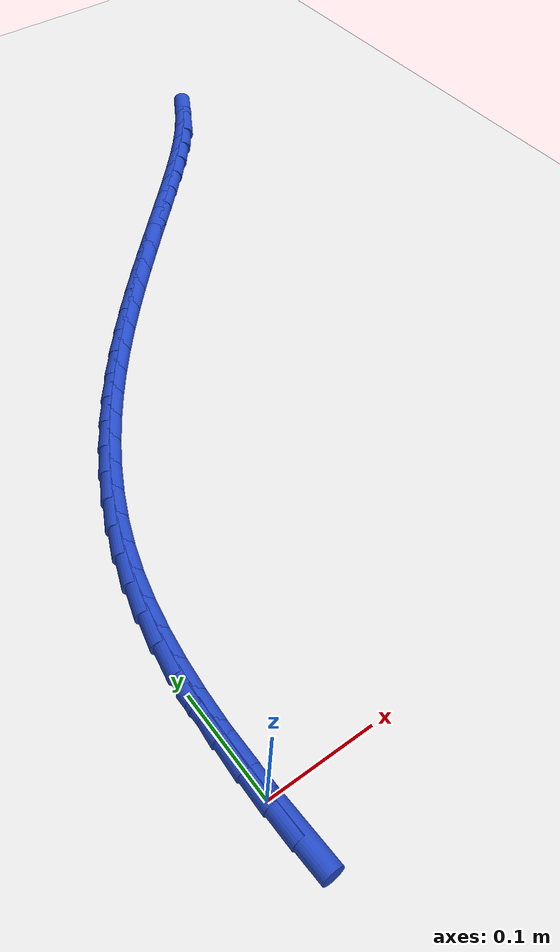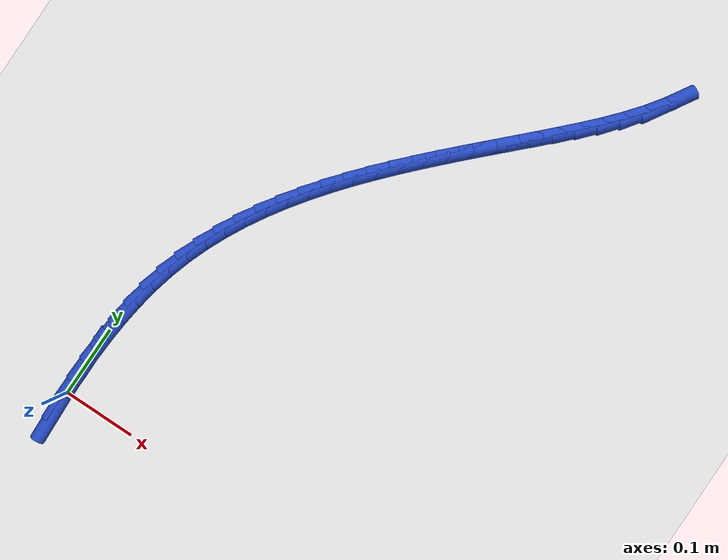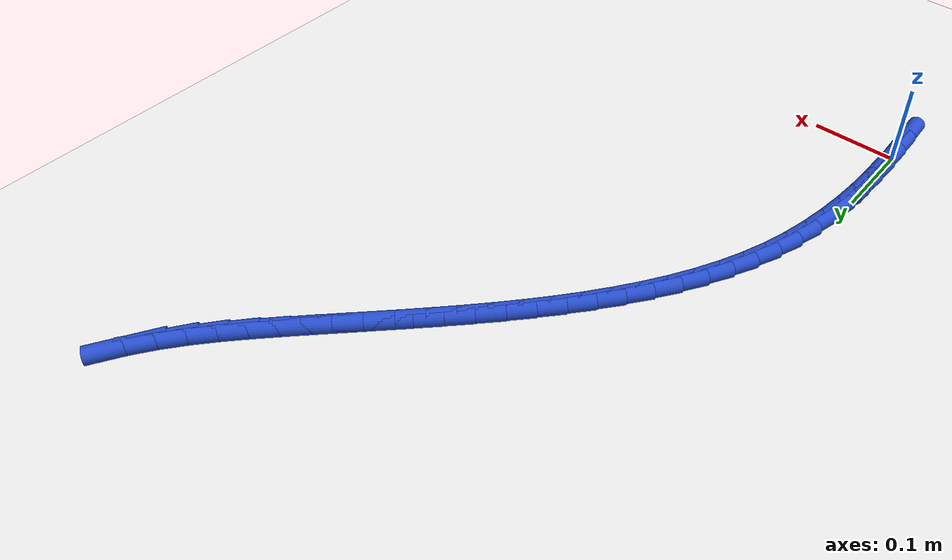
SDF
<sdf version="1.6">
 <world name="default">
  <model name="ground_plane">
   <static>1</static>
   <link name="link">
    <collision name="collision">
     <geometry><plane><normal>0 0 1</normal><size>100 100</size></plane></geometry>
     <surface><friction><ode><mu>100</mu><mu2>50</mu2></ode></friction></surface>
    </collision>
    <visual name="visual">
     <cast_shadows>0</cast_shadows>
     <geometry><plane><normal>0 0 1</normal><size>100 100</size></plane></geometry>
     <material>
      <script><uri>file://media/materials/scripts/gazebo.material</uri><name>Gazebo/WhiteGlow</name></script>
     </material>
    </visual>
   </link>
  </model>
  <model name="line">
   <link name="link_0">
    <pose>4.336808689942018e-19 -4.85722573273506e-17 0.01 0 1.57 -1.557330671674084</pose>
    <collision name="collision">
     <geometry><cylinder><radius>0.01</radius><length>0.08</length></cylinder></geometry>
    </collision>
    <visual name="visual">
     <material>
      <script><name>Gazebo/Blue</name><uri>file://media/materials/scripts/gazebo.material</uri></script>
     </material>
     <geometry><cylinder><radius>0.01</radius><length>0.08</length></cylinder></geometry>
    </visual>
   </link>
   <link name="link_1">
    <pose>-0.00040750909841996545 0.030261020655215857 0.01 0 1.57 1.5542438206750813</pose>
    <collision name="collision">
     <geometry><cylinder><radius>0.01</radius><length>0.08</length></cylinder></geometry>
    </collision>
    <visual name="visual">
     <material>
      <script><name>Gazebo/Blue</name><uri>file://media/materials/scripts/gazebo.material</uri></script>
     </material>
     <geometry><cylinder><radius>0.01</radius><length>0.08</length></cylinder></geometry>
    </visual>
   </link>
   <link name="link_2">
    <pose>9.522308559340646e-05 0.06063021464714905 0.01 0 1.57 1.5196190682958277</pose>
    <collision name="collision">
     <geometry><cylinder><radius>0.01</radius><length>0.08</length></cylinder></geometry>
    </collision>
    <visual name="visual">
     <material>
      <script><name>Gazebo/Blue</name><uri>file://media/materials/scripts/gazebo.material</uri></script>
     </material>
     <geometry><cylinder><radius>0.01</radius><length>0.08</length></cylinder></geometry>
    </visual>
   </link>
   <link name="link_3">
    <pose>0.0016496046698707635 0.09097619955869332 0.01 0 1.57 1.480045543788622</pose>
    <collision name="collision">
     <geometry><cylinder><radius>0.01</radius><length>0.08</length></cylinder></geometry>
    </collision>
    <visual name="visual">
     <material>
      <script><name>Gazebo/Blue</name><uri>file://media/materials/scripts/gazebo.material</uri></script>
     </material>
     <geometry><cylinder><radius>0.01</radius><length>0.08</length></cylinder></geometry>
    </visual>
   </link>
   <link name="link_4">
    <pose>0.004397043772242746 0.12116759297274225 0.01 0 1.57 1.43514081480295</pose>
    <collision name="collision">
     <geometry><cylinder><radius>0.01</radius><length>0.08</length></cylinder></geometry>
    </collision>
    <visual name="visual">
     <material>
      <script><name>Gazebo/Blue</name><uri>file://media/materials/scripts/gazebo.material</uri></script>
     </material>
     <geometry><cylinder><radius>0.01</radius><length>0.08</length></cylinder></geometry>
    </visual>
   </link>
   <link name="link_5">
    <pose>0.008478948510540006 0.15107301247218968 0.01 0 1.57 1.384506139608768</pose>
    <collision name="collision">
     <geometry><cylinder><radius>0.01</radius><length>0.08</length></cylinder></geometry>
    </collision>
    <visual name="visual">
     <material>
      <script><name>Gazebo/Blue</name><uri>file://media/materials/scripts/gazebo.material</uri></script>
     </material>
     <geometry><cylinder><radius>0.01</radius><length>0.08</length></cylinder></geometry>
    </visual>
   </link>
   <link name="link_6">
    <pose>0.014036727002593188 0.18056107563992924 0.01 0 1.57 1.3277624946852375</pose>
    <collision name="collision">
     <geometry><cylinder><radius>0.01</radius><length>0.08</length></cylinder></geometry>
    </collision>
    <visual name="visual">
     <material>
      <script><name>Gazebo/Blue</name><uri>file://media/materials/scripts/gazebo.material</uri></script>
     </material>
     <geometry><cylinder><radius>0.01</radius><length>0.08</length></cylinder></geometry>
    </visual>
   </link>
   <link name="link_7">
    <pose>0.02121178736623293 0.20950040005885456 0.01 0 1.57 1.264878874996774</pose>
    <collision name="collision">
     <geometry><cylinder><radius>0.01</radius><length>0.08</length></cylinder></geometry>
    </collision>
    <visual name="visual">
     <material>
      <script><name>Gazebo/Blue</name><uri>file://media/materials/scripts/gazebo.material</uri></script>
     </material>
     <geometry><cylinder><radius>0.01</radius><length>0.08</length></cylinder></geometry>
    </visual>
   </link>
   <link name="link_8">
    <pose>0.030138379030528524 0.2377641429210412 0.01 0 1.57 1.2010551654600476</pose>
    <collision name="collision">
     <geometry><cylinder><radius>0.01</radius><length>0.08</length></cylinder></geometry>
    </collision>
    <visual name="visual">
     <material>
      <script><name>Gazebo/Blue</name><uri>file://media/materials/scripts/gazebo.material</uri></script>
     </material>
     <geometry><cylinder><radius>0.01</radius><length>0.08</length></cylinder></geometry>
    </visual>
   </link>
   <link name="link_9">
    <pose>0.04081483946518975 0.26531164859601863 0.01 0 1.57 1.1413833719987403</pose>
    <collision name="collision">
     <geometry><cylinder><radius>0.01</radius><length>0.08</length></cylinder></geometry>
    </collision>
    <visual name="visual">
     <material>
      <script><name>Gazebo/Blue</name><uri>file://media/materials/scripts/gazebo.material</uri></script>
     </material>
     <geometry><cylinder><radius>0.01</radius><length>0.08</length></cylinder></geometry>
    </visual>
   </link>
   <link name="link_10">
    <pose>0.05311786862572651 0.29217939663752573 0.01 0 1.57 1.0863715544711166</pose>
    <collision name="collision">
     <geometry><cylinder><radius>0.01</radius><length>0.08</length></cylinder></geometry>
    </collision>
    <visual name="visual">
     <material>
      <script><name>Gazebo/Blue</name><uri>file://media/materials/scripts/gazebo.material</uri></script>
     </material>
     <geometry><cylinder><radius>0.01</radius><length>0.08</length></cylinder></geometry>
    </visual>
   </link>
   <link name="link_11">
    <pose>0.06691987369153346 0.31840658881932216 0.01 0 1.57 1.0361963824167704</pose>
    <collision name="collision">
     <geometry><cylinder><radius>0.01</radius><length>0.08</length></cylinder></geometry>
    </collision>
    <visual name="visual">
     <material>
      <script><name>Gazebo/Blue</name><uri>file://media/materials/scripts/gazebo.material</uri></script>
     </material>
     <geometry><cylinder><radius>0.01</radius><length>0.08</length></cylinder></geometry>
    </visual>
   </link>
   <link name="link_12">
    <pose>0.08209326184200522 0.34403242691516717 0.01 0 1.57 0.9909012333198532</pose>
    <collision name="collision">
     <geometry><cylinder><radius>0.01</radius><length>0.08</length></cylinder></geometry>
    </collision>
    <visual name="visual">
     <material>
      <script><name>Gazebo/Blue</name><uri>file://media/materials/scripts/gazebo.material</uri></script>
     </material>
     <geometry><cylinder><radius>0.01</radius><length>0.08</length></cylinder></geometry>
    </visual>
   </link>
   <link name="link_13">
    <pose>0.09851044025653646 0.3690961126988206 0.01 0 1.57 0.9504313867910731</pose>
    <collision name="collision">
     <geometry><cylinder><radius>0.01</radius><length>0.08</length></cylinder></geometry>
    </collision>
    <visual name="visual">
     <material>
      <script><name>Gazebo/Blue</name><uri>file://media/materials/scripts/gazebo.material</uri></script>
     </material>
     <geometry><cylinder><radius>0.01</radius><length>0.08</length></cylinder></geometry>
    </visual>
   </link>
   <link name="link_14">
    <pose>0.11604381611452176 0.39363684794404147 0.01 0 1.57 0.9146671694281283</pose>
    <collision name="collision">
     <geometry><cylinder><radius>0.01</radius><length>0.08</length></cylinder></geometry>
    </collision>
    <visual name="visual">
     <material>
      <script><name>Gazebo/Blue</name><uri>file://media/materials/scripts/gazebo.material</uri></script>
     </material>
     <geometry><cylinder><radius>0.01</radius><length>0.08</length></cylinder></geometry>
    </visual>
   </link>
   <link name="link_15">
    <pose>0.13456579659535586 0.41769383442458974 0.01 0 1.57 0.8834523863434248</pose>
    <collision name="collision">
     <geometry><cylinder><radius>0.01</radius><length>0.08</length></cylinder></geometry>
    </collision>
    <visual name="visual">
     <material>
      <script><name>Gazebo/Blue</name><uri>file://media/materials/scripts/gazebo.material</uri></script>
     </material>
     <geometry><cylinder><radius>0.01</radius><length>0.08</length></cylinder></geometry>
    </visual>
   </link>
   <link name="link_16">
    <pose>0.1539487888784334 0.44130627391422467 0.01 0 1.57 0.856617141175213</pose>
    <collision name="collision">
     <geometry><cylinder><radius>0.01</radius><length>0.08</length></cylinder></geometry>
    </collision>
    <visual name="visual">
     <material>
      <script><name>Gazebo/Blue</name><uri>file://media/materials/scripts/gazebo.material</uri></script>
     </material>
     <geometry><cylinder><radius>0.01</radius><length>0.08</length></cylinder></geometry>
    </visual>
   </link>
   <link name="link_17">
    <pose>0.17406520014314905 0.4645133681867059 0.01 0 1.57 0.8339952775698508</pose>
    <collision name="collision">
     <geometry><cylinder><radius>0.01</radius><length>0.08</length></cylinder></geometry>
    </collision>
    <visual name="visual">
     <material>
      <script><name>Gazebo/Blue</name><uri>file://media/materials/scripts/gazebo.material</uri></script>
     </material>
     <geometry><cylinder><radius>0.01</radius><length>0.08</length></cylinder></geometry>
    </visual>
   </link>
   <link name="link_18">
    <pose>0.19478743756889727 0.4873543190157926 0.01 0 1.57 0.8154372553088627</pose>
    <collision name="collision">
     <geometry><cylinder><radius>0.01</radius><length>0.08</length></cylinder></geometry>
    </collision>
    <visual name="visual">
     <material>
      <script><name>Gazebo/Blue</name><uri>file://media/materials/scripts/gazebo.material</uri></script>
     </material>
     <geometry><cylinder><radius>0.01</radius><length>0.08</length></cylinder></geometry>
    </visual>
   </link>
   <link name="link_19">
    <pose>0.21598790833507295 0.5098683281752447 0.01 0 1.57 0.8008194710903168</pose>
    <collision name="collision">
     <geometry><cylinder><radius>0.01</radius><length>0.08</length></cylinder></geometry>
    </collision>
    <visual name="visual">
     <material>
      <script><name>Gazebo/Blue</name><uri>file://media/materials/scripts/gazebo.material</uri></script>
     </material>
     <geometry><cylinder><radius>0.01</radius><length>0.08</length></cylinder></geometry>
    </visual>
   </link>
   <link name="link_20">
    <pose>0.23753901962107063 0.5320945974388215 0.01 0 1.57 0.7900510066600823</pose>
    <collision name="collision">
     <geometry><cylinder><radius>0.01</radius><length>0.08</length></cylinder></geometry>
    </collision>
    <visual name="visual">
     <material>
      <script><name>Gazebo/Blue</name><uri>file://media/materials/scripts/gazebo.material</uri></script>
     </material>
     <geometry><cylinder><radius>0.01</radius><length>0.08</length></cylinder></geometry>
    </visual>
   </link>
   <link name="link_21">
    <pose>0.259313178606285 0.5540723285802825 0.01 0 1.57 0.7830786512952228</pose>
    <collision name="collision">
     <geometry><cylinder><radius>0.01</radius><length>0.08</length></cylinder></geometry>
    </collision>
    <visual name="visual">
     <material>
      <script><name>Gazebo/Blue</name><uri>file://media/materials/scripts/gazebo.material</uri></script>
     </material>
     <geometry><cylinder><radius>0.01</radius><length>0.08</length></cylinder></geometry>
    </visual>
   </link>
   <link name="link_22">
    <pose>0.28118279247011063 0.5758407233733872 0.01 0 1.57 0.7798908713360476</pose>
    <collision name="collision">
     <geometry><cylinder><radius>0.01</radius><length>0.08</length></cylinder></geometry>
    </collision>
    <visual name="visual">
     <material>
      <script><name>Gazebo/Blue</name><uri>file://media/materials/scripts/gazebo.material</uri></script>
     </material>
     <geometry><cylinder><radius>0.01</radius><length>0.08</length></cylinder></geometry>
    </visual>
   </link>
   <link name="link_23">
    <pose>0.30302026839194224 0.5974389835918952 0.01 0 1.57 0.7805212200813494</pose>
    <collision name="collision">
     <geometry><cylinder><radius>0.01</radius><length>0.08</length></cylinder></geometry>
    </collision>
    <visual name="visual">
     <material>
      <script><name>Gazebo/Blue</name><uri>file://media/materials/scripts/gazebo.material</uri></script>
     </material>
     <geometry><cylinder><radius>0.01</radius><length>0.08</length></cylinder></geometry>
    </visual>
   </link>
   <link name="link_24">
    <pose>0.32469801355117456 0.6189063110095661 0.01 0 1.57 0.7850515053370127</pose>
    <collision name="collision">
     <geometry><cylinder><radius>0.01</radius><length>0.08</length></cylinder></geometry>
    </collision>
    <visual name="visual">
     <material>
      <script><name>Gazebo/Blue</name><uri>file://media/materials/scripts/gazebo.material</uri></script>
     </material>
     <geometry><cylinder><radius>0.01</radius><length>0.08</length></cylinder></geometry>
    </visual>
   </link>
   <link name="link_25">
    <pose>0.3460884351272021 0.6402819074001589 0.01 0 1.57 0.7939475017965634</pose>
    <collision name="collision">
     <geometry><cylinder><radius>0.01</radius><length>0.08</length></cylinder></geometry>
    </collision>
    <visual name="visual">
     <material>
      <script><name>Gazebo/Blue</name><uri>file://media/materials/scripts/gazebo.material</uri></script>
     </material>
     <geometry><cylinder><radius>0.01</radius><length>0.08</length></cylinder></geometry>
    </visual>
   </link>
   <link name="link_26">
    <pose>0.3670614657286973 0.6616166502868205 0.01 0 1.57 0.8125721955080066</pose>
    <collision name="collision">
     <geometry><cylinder><radius>0.01</radius><length>0.08</length></cylinder></geometry>
    </collision>
    <visual name="visual">
     <material>
      <script><name>Gazebo/Blue</name><uri>file://media/materials/scripts/gazebo.material</uri></script>
     </material>
     <geometry><cylinder><radius>0.01</radius><length>0.08</length></cylinder></geometry>
    </visual>
   </link>
   <link name="link_27">
    <pose>0.38744855752923324 0.6831429791551384 0.01 0 1.57 0.845081043685781</pose>
    <collision name="collision">
     <geometry><cylinder><radius>0.01</radius><length>0.08</length></cylinder></geometry>
    </collision>
    <visual name="visual">
     <material>
      <script><name>Gazebo/Blue</name><uri>file://media/materials/scripts/gazebo.material</uri></script>
     </material>
     <geometry><cylinder><radius>0.01</radius><length>0.08</length></cylinder></geometry>
    </visual>
   </link>
   <link name="link_28">
    <pose>0.4070507789272187 0.7052366930403261 0.01 0 1.57 0.8911798800675097</pose>
    <collision name="collision">
     <geometry><cylinder><radius>0.01</radius><length>0.08</length></cylinder></geometry>
    </collision>
    <visual name="visual">
     <material>
      <script><name>Gazebo/Blue</name><uri>file://media/materials/scripts/gazebo.material</uri></script>
     </material>
     <geometry><cylinder><radius>0.01</radius><length>0.08</length></cylinder></geometry>
    </visual>
   </link>
   <link name="link_29">
    <pose>0.4256683714655156 0.7282774923242242 0.01 0 1.57 0.9497921583643891</pose>
    <collision name="collision">
     <geometry><cylinder><radius>0.01</radius><length>0.08</length></cylinder></geometry>
    </collision>
    <visual name="visual">
     <material>
      <script><name>Gazebo/Blue</name><uri>file://media/materials/scripts/gazebo.material</uri></script>
     </material>
     <geometry><cylinder><radius>0.01</radius><length>0.08</length></cylinder></geometry>
    </visual>
   </link>
   <link name="link_30">
    <pose>0.44310157668698585 0.7526450773886726 0.01 0 1.57 1.0190446234355461</pose>
    <collision name="collision">
     <geometry><cylinder><radius>0.01</radius><length>0.08</length></cylinder></geometry>
    </collision>
    <visual name="visual">
     <material>
      <script><name>Gazebo/Blue</name><uri>file://media/materials/scripts/gazebo.material</uri></script>
     </material>
     <geometry><cylinder><radius>0.01</radius><length>0.08</length></cylinder></geometry>
    </visual>
   </link>
   <link name="link_279">
    <pose>0.0011941514386579427 -0.03005358775462017 0.01 0 1.57 -1.5310831450501667</pose>
    <collision name="collision">
     <geometry><cylinder><radius>0.01</radius><length>0.08</length></cylinder></geometry>
    </collision>
    <visual name="visual">
     <material>
      <script><name>Gazebo/Blue</name><uri>file://media/materials/scripts/gazebo.material</uri></script>
     </material>
     <geometry><cylinder><radius>0.01</radius><length>0.08</length></cylinder></geometry>
    </visual>
   </link>
   <link name="link_280">
    <pose>6.071532165918825e-18 -1.1102230246251565e-16 0.01 0 1.57 -1.5567571654105705</pose>
    <collision name="collision">
     <geometry><cylinder><radius>0.01</radius><length>0.08</length></cylinder></geometry>
    </collision>
    <visual name="visual">
     <material>
      <script><name>Gazebo/Blue</name><uri>file://media/materials/scripts/gazebo.material</uri></script>
     </material>
     <geometry><cylinder><radius>0.01</radius><length>0.08</length></cylinder></geometry>
    </visual>
   </link>
   <link name="link_281">
    <pose>-0.000425318274055246 0.030293143508443584 0.01 0 1.57 1.5584393926034223</pose>
    <collision name="collision">
     <geometry><cylinder><radius>0.01</radius><length>0.08</length></cylinder></geometry>
    </collision>
    <visual name="visual">
     <material>
      <script><name>Gazebo/Blue</name><uri>file://media/materials/scripts/gazebo.material</uri></script>
     </material>
     <geometry><cylinder><radius>0.01</radius><length>0.08</length></cylinder></geometry>
    </visual>
   </link>
   <link name="link_282">
    <pose>-4.725031948887154e-05 0.060887197472972075 0.01 0 1.57 -1.5700202964968233</pose>
    <collision name="collision">
     <geometry><cylinder><radius>0.01</radius><length>0.08</length></cylinder></geometry>
    </collision>
    <visual name="visual">
     <material>
      <script><name>Gazebo/Blue</name><uri>file://media/materials/scripts/gazebo.material</uri></script>
     </material>
     <geometry><cylinder><radius>0.01</radius><length>0.08</length></cylinder></geometry>
    </visual>
   </link>
  </model>
 </world>
</sdf>
